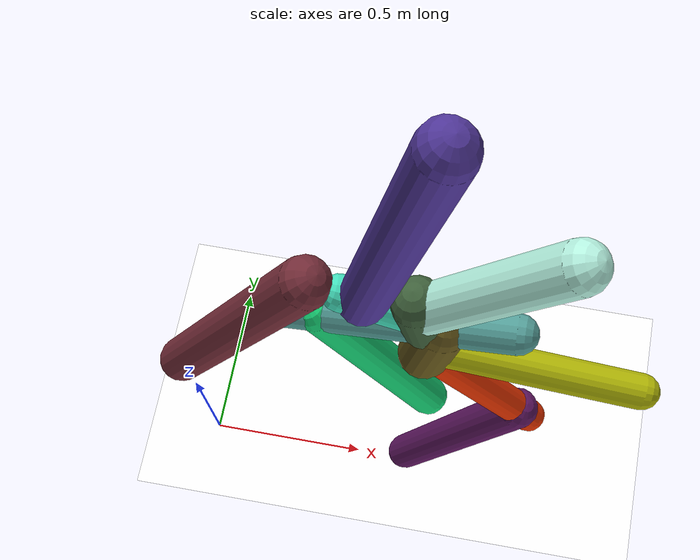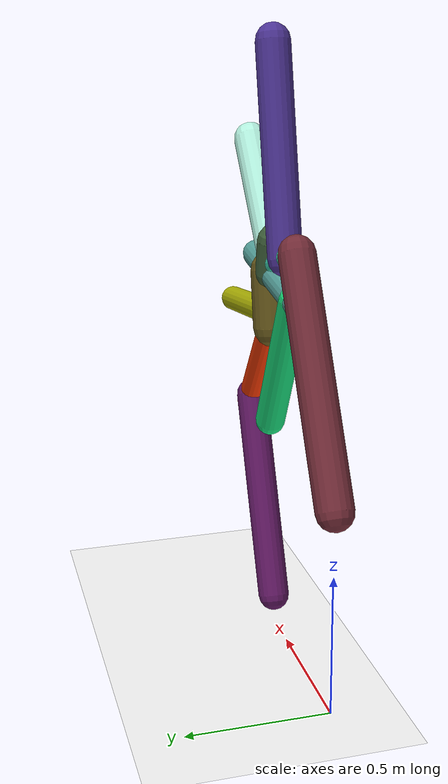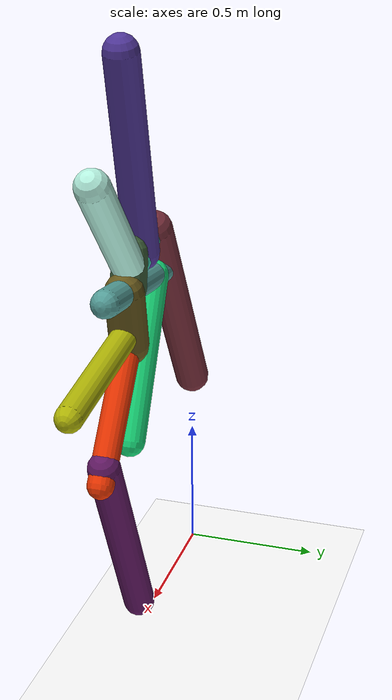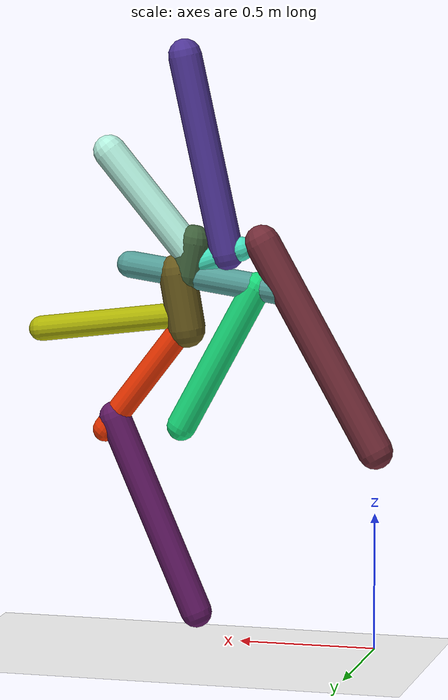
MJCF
<mujoco model="morphology">
  <option timestep="0.01"/>
  <default>
    <default class="/"/>
    <default class="0/"/>
    <default class="0/1/"/>
    <default class="0/1/2/"/>
    <default class="0/1/3/"/>
    <default class="0/1/3/4/"/>
    <default class="0/1/3/5/"/>
    <default class="0/1/3/5/6/"/>
    <default class="0/1/7/"/>
    <default class="0/1/7/8/"/>
    <default class="0/1/7/9/"/>
    <default class="0/1/7/9/10/"/>
  </default>
  <asset>
    <texture name="texplane" type="2d" builtin="checker" rgb1="0.10000000000000001 0.20000000000000001 0.29999999999999999" rgb2="0.20000000000000001 0.29999999999999999 0.40000000000000002" width="300" height="300"/>
    <material name="MatPlane" class="/" texture="texplane" texrepeat="20 20" specular="1" shininess="1" reflectance="0.5"/>
  </asset>
  <worldbody>
    <light name="//unnamed_light_0" class="/" directional="true" pos="0 0 1.5" dir="0 0 -1.3" cutoff="100" exponent="1" diffuse="1 1 1" specular="0.10000000000000001 0.10000000000000001 0.10000000000000001"/>
    <geom name="ground" class="/" type="plane" size="15 15 0.5" material="MatPlane" rgba="1 1 1 1"/>
    <site name="body" class="/" size="9.9999999999999995e-07 9.9999999999999995e-07 9.9999999999999995e-07" pos="0 0 0.72793201208114622"/>
    <body pos="0 0 0.72793201208114622" name="0/">
      <joint name="0/rootx/" class="/" type="slide" axis="1 0 0" limited="false" stiffness="0" armature="0" damping="0"/>
      <joint name="0/rootz/" class="/" type="slide" axis="0 0 1" limited="false" stiffness="0" armature="0" damping="0"/>
      <joint name="0/rooty/" class="/" type="hinge" axis="0 1 0" limited="false" stiffness="0" armature="0" damping="0"/>
      <geom name="0/geom" class="0/" type="capsule" contype="1" conaffinity="1" condim="3" size="0.064638589080317194" rgba="0.45509092285991937 0.17573500851877122 0.22224127778432179 1" friction="0.59999999999999998 0.10000000000000001 0.10000000000000001" fromto="0 0 0 0.42069334056688268 0 0.74462674382587357"/>
      <site name="0/end0" class="0/" size="0.0050000000000000001" pos="0.42069334056688268 0 0.74462674382587357"/>
      <site name="0/attach1" class="0/" size="9.9999999999999995e-07 9.9999999999999995e-07 9.9999999999999995e-07" pos="0.31961016303449202 0 0.56570963227832272"/>
      <body pos="0.31961016303449202 0 0.56570963227832272" name="0/1/">
        <joint name="0/1/joint/" class="0/" type="hinge" axis="0 1 0" limited="true" range="-51.004701507723993 51.004701507723993"/>
        <geom name="0/1/geom" class="0/1/" type="capsule" contype="1" conaffinity="1" condim="3" size="0.049342121028543642" rgba="0.33296570193534325 0.62682508505045842 0.60428735663622835 1" friction="0.59999999999999998 0.10000000000000001 0.10000000000000001" fromto="0 0 0 0.59281860654688501 0 0.082129871380809849"/>
        <site name="0/1/end1" class="0/1/" size="0.0050000000000000001" pos="0.59281860654688501 0 0.082129871380809849"/>
        <site name="0/1/attach2" class="0/1/" size="9.9999999999999995e-07 9.9999999999999995e-07 9.9999999999999995e-07" pos="0.12114684327096192 0 0.016783843398559591"/>
        <body pos="0.12114684327096192 0 0.016783843398559591" name="0/1/2/">
          <joint name="0/1/2/joint/" class="0/1/" type="hinge" axis="0 1 0" limited="true" range="-55.863477816934839 55.863477816934839"/>
          <geom name="0/1/2/geom" class="0/1/2/" type="capsule" contype="1" conaffinity="1" condim="3" size="0.054192097462970823" rgba="0.09199637833257146 0.85447989726690388 0.47852653473552853 1" friction="0.59999999999999998 0.10000000000000001 0.10000000000000001" fromto="0 0 0 0.28113177580674242 0 -0.52159914690692388"/>
          <site name="0/1/2/end2" class="0/1/2/" size="0.0050000000000000001" pos="0.28113177580674242 0 -0.52159914690692388"/>
        </body>
        <site name="0/1/attach3" class="0/1/" size="9.9999999999999995e-07 9.9999999999999995e-07 9.9999999999999995e-07" pos="0.37853743617349278 0 0.05244307550810938"/>
        <body pos="0.37853743617349278 0 0.05244307550810938" name="0/1/3/">
          <joint name="0/1/3/joint/" class="0/1/" type="hinge" axis="0 1 0" limited="true" range="-33.826212880352301 33.826212880352301"/>
          <geom name="0/1/3/geom" class="0/1/3/" type="capsule" contype="1" conaffinity="1" condim="3" size="0.061875059668960189" rgba="0.2489720909261609 0.38246382002562496 0.23512440461729789 1" friction="0.59999999999999998 0.10000000000000001 0.10000000000000001" fromto="0 0 0 -0.023122453434424206 0 0.12075120017994423"/>
          <site name="0/1/3/end3" class="0/1/3/" size="0.0050000000000000001" pos="-0.023122453434424206 0 0.12075120017994423"/>
          <site name="0/1/3/attach4" class="0/1/3/" size="9.9999999999999995e-07 9.9999999999999995e-07 9.9999999999999995e-07" pos="-0.014065556473064605 0 0.073453832662616347"/>
          <body pos="-0.014065556473064605 0 0.073453832662616347" name="0/1/3/4/">
            <joint name="0/1/3/4/joint/" class="0/1/3/" type="hinge" axis="0 1 0" limited="true" range="-36.626655878617761 36.626655878617761"/>
            <geom name="0/1/3/4/geom" class="0/1/3/4/" type="capsule" contype="1" conaffinity="1" condim="3" size="0.059555734483321895" rgba="0.71062783490212111 0.95245651228673833 0.88177608571176236 1" friction="0.59999999999999998 0.10000000000000001 0.10000000000000001" fromto="0 0 0 0.30585187362443134 0 0.36657698555929397"/>
            <site name="0/1/3/4/end4" class="0/1/3/4/" size="0.0050000000000000001" pos="0.30585187362443134 0 0.36657698555929397"/>
          </body>
          <site name="0/1/3/attach5" class="0/1/3/" size="9.9999999999999995e-07 9.9999999999999995e-07 9.9999999999999995e-07" pos="-0.0061079914973962814 0 0.031897450073418737"/>
          <body pos="-0.0061079914973962814 0 0.031897450073418737" name="0/1/3/5/">
            <geom name="0/1/3/5/geom" class="0/1/3/5/" type="capsule" contype="1" conaffinity="1" condim="3" size="0.043957761701892133" rgba="0.26646829067045708 0.88362512077902788 0.74762474666695167 1" friction="0.59999999999999998 0.10000000000000001 0.10000000000000001" fromto="0 0 0 -0.19489427400369519 0 0.069429811321783719"/>
            <site name="0/1/3/5/end5" class="0/1/3/5/" size="0.0050000000000000001" pos="-0.19489427400369519 0 0.069429811321783719"/>
            <site name="0/1/3/5/attach6" class="0/1/3/5/" size="9.9999999999999995e-07 9.9999999999999995e-07 9.9999999999999995e-07" pos="-0.14060069283010765 0 0.050088077881248368"/>
            <body pos="-0.14060069283010765 0 0.050088077881248368" name="0/1/3/5/6/">
              <joint name="0/1/3/5/6/joint/" class="0/1/3/5/" type="hinge" axis="0 1 0" limited="true" range="-50.584061686661386 50.584061686661386"/>
              <geom name="0/1/3/5/6/geom" class="0/1/3/5/6/" type="capsule" contype="1" conaffinity="1" condim="3" size="0.060919345860923693" rgba="0.31219685102972505 0.21191131159423193 0.59863577531890577 1" friction="0.59999999999999998 0.10000000000000001 0.10000000000000001" fromto="0 0 0 0.15631038433785838 0 0.71204120349205535"/>
              <site name="0/1/3/5/6/end6" class="0/1/3/5/6/" size="0.0050000000000000001" pos="0.15631038433785838 0 0.71204120349205535"/>
            </body>
          </body>
        </body>
        <site name="0/1/attach7" class="0/1/" size="9.9999999999999995e-07 9.9999999999999995e-07 9.9999999999999995e-07" pos="0.41704882393740161 0 0.057778493946086799"/>
        <body pos="0.41704882393740161 0 0.057778493946086799" name="0/1/7/">
          <joint name="0/1/7/joint/" class="0/1/" type="hinge" axis="0 1 0" limited="true" range="-57.643266907925032 57.643266907925032"/>
          <geom name="0/1/7/geom" class="0/1/7/" type="capsule" contype="1" conaffinity="1" condim="3" size="0.068265791660619829" rgba="0.40860392684357816 0.34920311838572171 0.10928180314118763 1" friction="0.59999999999999998 0.10000000000000001 0.10000000000000001" fromto="0 0 0 -0.035284039129424905 0 -0.20473311812490591"/>
          <site name="0/1/7/end7" class="0/1/7/" size="0.0050000000000000001" pos="-0.035284039129424905 0 -0.20473311812490591"/>
          <site name="0/1/7/attach8" class="0/1/7/" size="9.9999999999999995e-07 9.9999999999999995e-07 9.9999999999999995e-07" pos="-0.02606276042830967 0 -0.15122730676773333"/>
          <body pos="-0.02606276042830967 0 -0.15122730676773333" name="0/1/7/8/">
            <geom name="0/1/7/8/geom" class="0/1/7/8/" type="capsule" contype="1" conaffinity="1" condim="3" size="0.046412136138142782" rgba="0.69457342062119809 0.71150212309297689 0.023491704794093238 1" friction="0.59999999999999998 0.10000000000000001 0.10000000000000001" fromto="0 0 0 0.5390625911157847 0 -0.073631176749388461"/>
            <site name="0/1/7/8/end8" class="0/1/7/8/" size="0.0050000000000000001" pos="0.5390625911157847 0 -0.073631176749388461"/>
          </body>
          <site name="0/1/7/attach9" class="0/1/7/" size="9.9999999999999995e-07 9.9999999999999995e-07 9.9999999999999995e-07" pos="-0.032012260327038022 0 -0.18574885519597648"/>
          <body pos="-0.032012260327038022 0 -0.18574885519597648" name="0/1/7/9/">
            <joint name="0/1/7/9/joint/" class="0/1/7/" type="hinge" axis="0 1 0" limited="true" range="-56.355082399312685 56.355082399312685"/>
            <geom name="0/1/7/9/geom" class="0/1/7/9/" type="capsule" contype="1" conaffinity="1" condim="3" size="0.046562717196822076" rgba="0.9315998262054016 0.21066844166331455 0.0045881126971547559 1" friction="0.59999999999999998 0.10000000000000001 0.10000000000000001" fromto="0 0 0 0.30467267600761794 0 -0.40114199080586072"/>
            <site name="0/1/7/9/end9" class="0/1/7/9/" size="0.0050000000000000001" pos="0.30467267600761794 0 -0.40114199080586072"/>
            <site name="0/1/7/9/attach10" class="0/1/7/9/" size="9.9999999999999995e-07 9.9999999999999995e-07 9.9999999999999995e-07" pos="0.26887462125469469 0 -0.35400910334533314"/>
            <body pos="0.26887462125469469 0 -0.35400910334533314" name="0/1/7/9/10/">
              <joint name="0/1/7/9/10/joint/" class="0/1/7/9/" type="hinge" axis="0 1 0" limited="true" range="-39.927269436684952 39.927269436684952"/>
              <geom name="0/1/7/9/10/geom" class="0/1/7/9/10/" type="capsule" contype="1" conaffinity="1" condim="3" size="0.057418345749444613" rgba="0.38344912012430898 0.098330424200182676 0.39228064167712129 1" friction="0.59999999999999998 0.10000000000000001 0.10000000000000001" fromto="0 0 0 -0.30683571104500129 0 -0.71166217620582684"/>
              <site name="0/1/7/9/10/end10" class="0/1/7/9/10/" size="0.0050000000000000001" pos="-0.30683571104500129 0 -0.71166217620582684"/>
            </body>
          </body>
        </body>
      </body>
      <camera name="0/side" class="0/" mode="trackcom" pos="0.40000000000000002 -4 0.20000000000000001" quat="0.70699999999999996 0.70699999999999996 0 0"/>
    </body>
  </worldbody>
  <actuator>
    <motor name="0/1/motor" class="0/1/" ctrllimited="true" ctrlrange="-1 1" gear="59" joint="0/1/joint/"/>
    <motor name="0/1/2/motor" class="0/1/2/" ctrllimited="true" ctrlrange="-1 1" gear="85" joint="0/1/2/joint/"/>
    <motor name="0/1/3/motor" class="0/1/3/" ctrllimited="true" ctrlrange="-1 1" gear="66" joint="0/1/3/joint/"/>
    <motor name="0/1/3/4/motor" class="0/1/3/4/" ctrllimited="true" ctrlrange="-1 1" gear="59" joint="0/1/3/4/joint/"/>
    <motor name="0/1/3/5/6/motor" class="0/1/3/5/6/" ctrllimited="true" ctrlrange="-1 1" gear="89" joint="0/1/3/5/6/joint/"/>
    <motor name="0/1/7/motor" class="0/1/7/" ctrllimited="true" ctrlrange="-1 1" gear="62" joint="0/1/7/joint/"/>
    <motor name="0/1/7/9/motor" class="0/1/7/9/" ctrllimited="true" ctrlrange="-1 1" gear="64" joint="0/1/7/9/joint/"/>
    <motor name="0/1/7/9/10/motor" class="0/1/7/9/10/" ctrllimited="true" ctrlrange="-1 1" gear="53" joint="0/1/7/9/10/joint/"/>
  </actuator>
  <sensor>
    <subtreelinvel name="velocity" body="0/"/>
  </sensor>
</mujoco>
